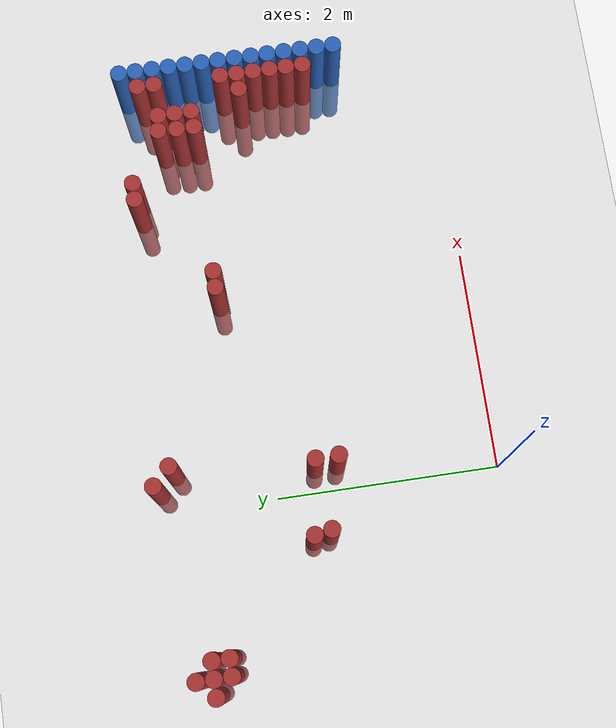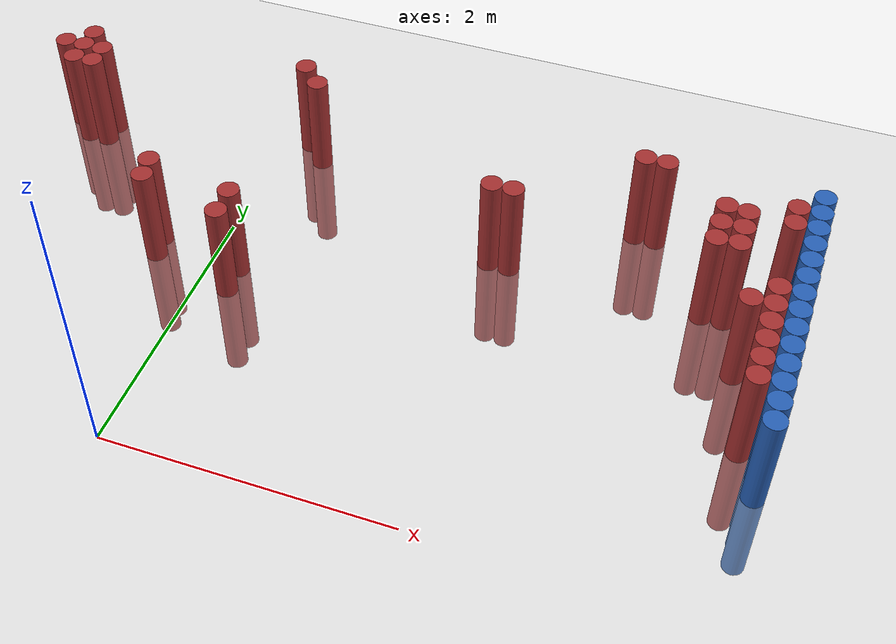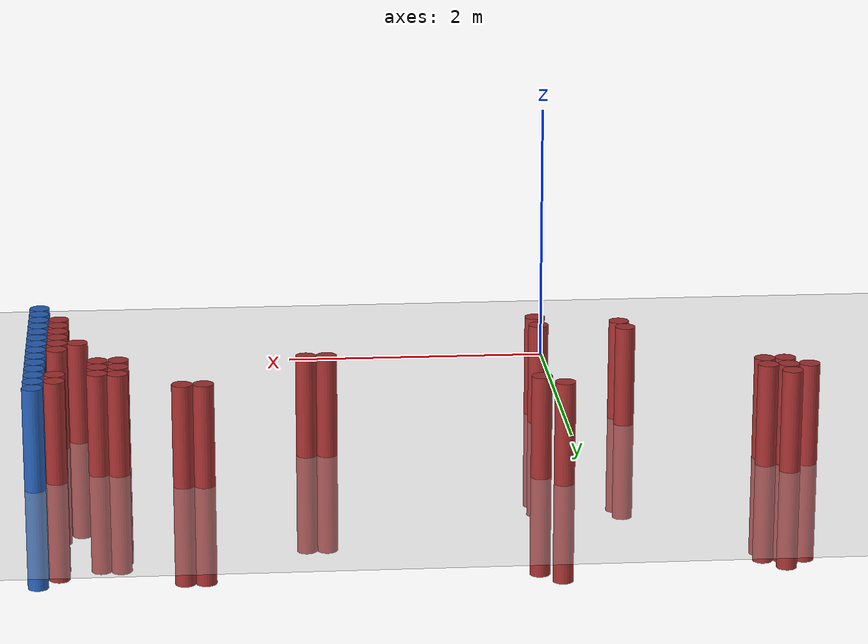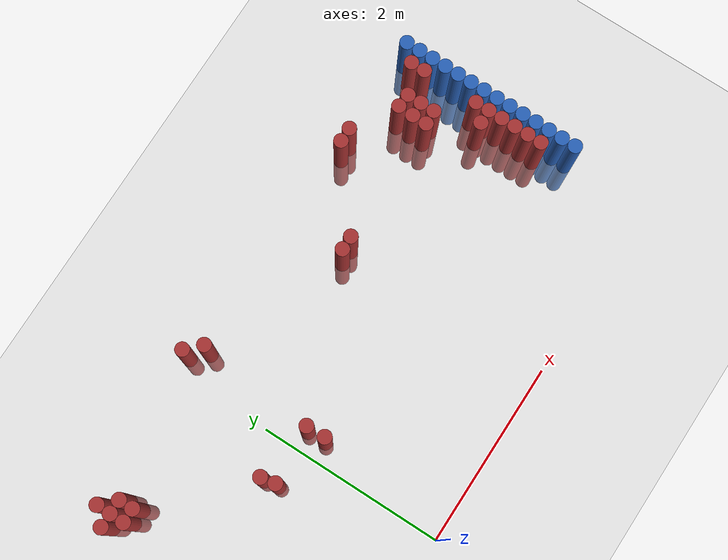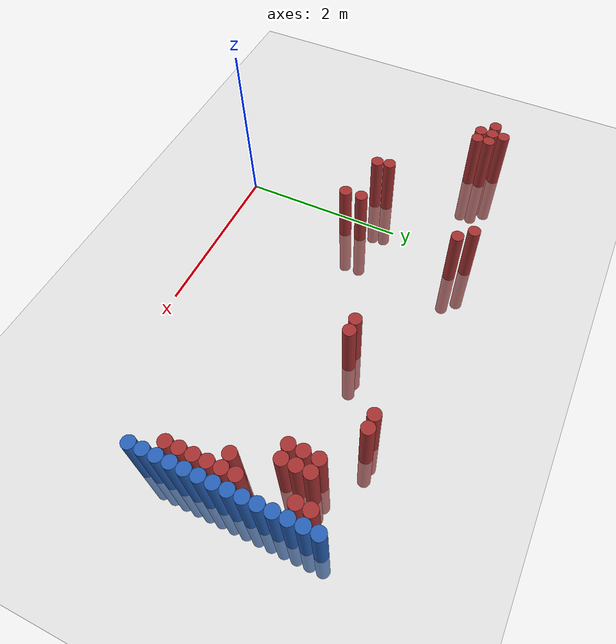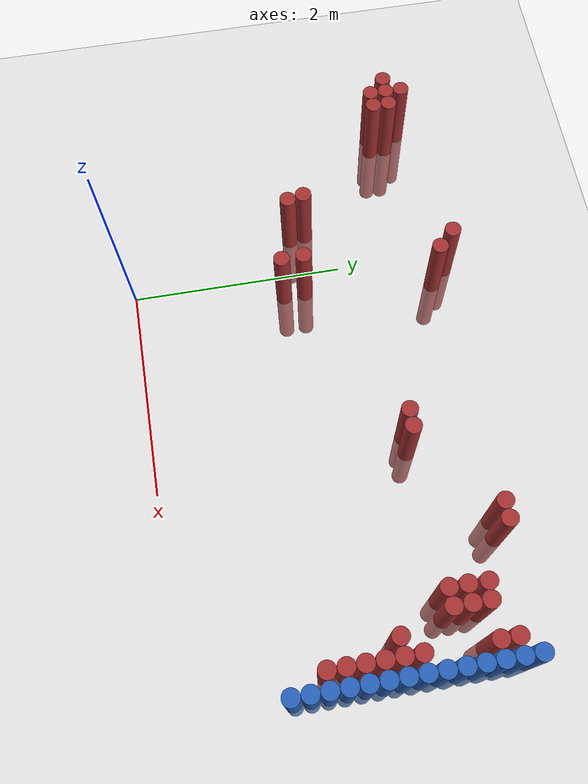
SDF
<sdf version="1.7">
 <world name="default">
  <model name="ground_plane">
   <static>1</static>
   <link name="link">
    <collision name="collision">
     <geometry><plane><normal>0 0 1</normal><size>100 100</size></plane></geometry>
     <surface><friction><ode><mu>100</mu><mu2>50</mu2></ode></friction></surface>
    </collision>
    <visual name="visual">
     <cast_shadows>0</cast_shadows>
     <geometry><plane><normal>0 0 1</normal><size>100 100</size></plane></geometry>
     <material>
      <script><uri>file://media/materials/scripts/gazebo.material</uri><name>Gazebo/Grey</name></script>
     </material>
    </visual>
   </link>
  </model>
  <model name="unit_cylinder_128">
   <static>1</static>
   <pose>3.925 1.075 0 0 -0 0</pose>
   <link name="link">
    <inertial>
     <mass>1</mass>
     <inertia><ixx>0.145833</ixx><ixy>0</ixy><ixz>0</ixz><iyy>0.145833</iyy><iyz>0</iyz><izz>0.125</izz></inertia>
    </inertial>
    <collision name="collision">
     <geometry><cylinder><radius>0.075</radius><length>1.5</length></cylinder></geometry>
    </collision>
    <visual name="visual">
     <geometry><cylinder><radius>0.075</radius><length>1.5</length></cylinder></geometry>
     <material><ambient>0.152 0.379 0.72 1</ambient><diffuse>0.152 0.379 0.72 1</diffuse></material>
     <material>
      <script><name>Gazebo/Grey</name><uri>file://media/materials/scripts/gazebo.material</uri></script>
     </material>
    </visual>
   </link>
  </model>
  <model name="unit_cylinder_130">
   <static>1</static>
   <pose>3.925 1.225 0 0 -0 0</pose>
   <link name="link">
    <inertial>
     <mass>1</mass>
     <inertia><ixx>0.145833</ixx><ixy>0</ixy><ixz>0</ixz><iyy>0.145833</iyy><iyz>0</iyz><izz>0.125</izz></inertia>
    </inertial>
    <collision name="collision">
     <geometry><cylinder><radius>0.075</radius><length>1.5</length></cylinder></geometry>
    </collision>
    <visual name="visual">
     <geometry><cylinder><radius>0.075</radius><length>1.5</length></cylinder></geometry>
     <material><ambient>0.152 0.379 0.72 1</ambient><diffuse>0.152 0.379 0.72 1</diffuse></material>
     <material>
      <script><name>Gazebo/Grey</name><uri>file://media/materials/scripts/gazebo.material</uri></script>
     </material>
    </visual>
   </link>
  </model>
  <model name="unit_cylinder_132">
   <static>1</static>
   <pose>3.925 1.375 0 0 -0 0</pose>
   <link name="link">
    <inertial>
     <mass>1</mass>
     <inertia><ixx>0.145833</ixx><ixy>0</ixy><ixz>0</ixz><iyy>0.145833</iyy><iyz>0</iyz><izz>0.125</izz></inertia>
    </inertial>
    <collision name="collision">
     <geometry><cylinder><radius>0.075</radius><length>1.5</length></cylinder></geometry>
    </collision>
    <visual name="visual">
     <geometry><cylinder><radius>0.075</radius><length>1.5</length></cylinder></geometry>
     <material><ambient>0.152 0.379 0.72 1</ambient><diffuse>0.152 0.379 0.72 1</diffuse></material>
     <material>
      <script><name>Gazebo/Grey</name><uri>file://media/materials/scripts/gazebo.material</uri></script>
     </material>
    </visual>
   </link>
  </model>
  <model name="unit_cylinder_134">
   <static>1</static>
   <pose>3.925 1.525 0 0 -0 0</pose>
   <link name="link">
    <inertial>
     <mass>1</mass>
     <inertia><ixx>0.145833</ixx><ixy>0</ixy><ixz>0</ixz><iyy>0.145833</iyy><iyz>0</iyz><izz>0.125</izz></inertia>
    </inertial>
    <collision name="collision">
     <geometry><cylinder><radius>0.075</radius><length>1.5</length></cylinder></geometry>
    </collision>
    <visual name="visual">
     <geometry><cylinder><radius>0.075</radius><length>1.5</length></cylinder></geometry>
     <material><ambient>0.152 0.379 0.72 1</ambient><diffuse>0.152 0.379 0.72 1</diffuse></material>
     <material>
      <script><name>Gazebo/Grey</name><uri>file://media/materials/scripts/gazebo.material</uri></script>
     </material>
    </visual>
   </link>
  </model>
  <model name="unit_cylinder_136">
   <static>1</static>
   <pose>3.925 1.675 0 0 -0 0</pose>
   <link name="link">
    <inertial>
     <mass>1</mass>
     <inertia><ixx>0.145833</ixx><ixy>0</ixy><ixz>0</ixz><iyy>0.145833</iyy><iyz>0</iyz><izz>0.125</izz></inertia>
    </inertial>
    <collision name="collision">
     <geometry><cylinder><radius>0.075</radius><length>1.5</length></cylinder></geometry>
    </collision>
    <visual name="visual">
     <geometry><cylinder><radius>0.075</radius><length>1.5</length></cylinder></geometry>
     <material><ambient>0.152 0.379 0.72 1</ambient><diffuse>0.152 0.379 0.72 1</diffuse></material>
     <material>
      <script><name>Gazebo/Grey</name><uri>file://media/materials/scripts/gazebo.material</uri></script>
     </material>
    </visual>
   </link>
  </model>
  <model name="unit_cylinder_138">
   <static>1</static>
   <pose>3.925 1.825 0 0 -0 0</pose>
   <link name="link">
    <inertial>
     <mass>1</mass>
     <inertia><ixx>0.145833</ixx><ixy>0</ixy><ixz>0</ixz><iyy>0.145833</iyy><iyz>0</iyz><izz>0.125</izz></inertia>
    </inertial>
    <collision name="collision">
     <geometry><cylinder><radius>0.075</radius><length>1.5</length></cylinder></geometry>
    </collision>
    <visual name="visual">
     <geometry><cylinder><radius>0.075</radius><length>1.5</length></cylinder></geometry>
     <material><ambient>0.152 0.379 0.72 1</ambient><diffuse>0.152 0.379 0.72 1</diffuse></material>
     <material>
      <script><name>Gazebo/Grey</name><uri>file://media/materials/scripts/gazebo.material</uri></script>
     </material>
    </visual>
   </link>
  </model>
  <model name="unit_cylinder_140">
   <static>1</static>
   <pose>3.925 1.975 0 0 -0 0</pose>
   <link name="link">
    <inertial>
     <mass>1</mass>
     <inertia><ixx>0.145833</ixx><ixy>0</ixy><ixz>0</ixz><iyy>0.145833</iyy><iyz>0</iyz><izz>0.125</izz></inertia>
    </inertial>
    <collision name="collision">
     <geometry><cylinder><radius>0.075</radius><length>1.5</length></cylinder></geometry>
    </collision>
    <visual name="visual">
     <geometry><cylinder><radius>0.075</radius><length>1.5</length></cylinder></geometry>
     <material><ambient>0.152 0.379 0.72 1</ambient><diffuse>0.152 0.379 0.72 1</diffuse></material>
     <material>
      <script><name>Gazebo/Grey</name><uri>file://media/materials/scripts/gazebo.material</uri></script>
     </material>
    </visual>
   </link>
  </model>
  <model name="unit_cylinder_142">
   <static>1</static>
   <pose>3.925 2.125 0 0 -0 0</pose>
   <link name="link">
    <inertial>
     <mass>1</mass>
     <inertia><ixx>0.145833</ixx><ixy>0</ixy><ixz>0</ixz><iyy>0.145833</iyy><iyz>0</iyz><izz>0.125</izz></inertia>
    </inertial>
    <collision name="collision">
     <geometry><cylinder><radius>0.075</radius><length>1.5</length></cylinder></geometry>
    </collision>
    <visual name="visual">
     <geometry><cylinder><radius>0.075</radius><length>1.5</length></cylinder></geometry>
     <material><ambient>0.152 0.379 0.72 1</ambient><diffuse>0.152 0.379 0.72 1</diffuse></material>
     <material>
      <script><name>Gazebo/Grey</name><uri>file://media/materials/scripts/gazebo.material</uri></script>
     </material>
    </visual>
   </link>
  </model>
  <model name="unit_cylinder_144">
   <static>1</static>
   <pose>3.925 2.275 0 0 -0 0</pose>
   <link name="link">
    <inertial>
     <mass>1</mass>
     <inertia><ixx>0.145833</ixx><ixy>0</ixy><ixz>0</ixz><iyy>0.145833</iyy><iyz>0</iyz><izz>0.125</izz></inertia>
    </inertial>
    <collision name="collision">
     <geometry><cylinder><radius>0.075</radius><length>1.5</length></cylinder></geometry>
    </collision>
    <visual name="visual">
     <geometry><cylinder><radius>0.075</radius><length>1.5</length></cylinder></geometry>
     <material><ambient>0.152 0.379 0.72 1</ambient><diffuse>0.152 0.379 0.72 1</diffuse></material>
     <material>
      <script><name>Gazebo/Grey</name><uri>file://media/materials/scripts/gazebo.material</uri></script>
     </material>
    </visual>
   </link>
  </model>
  <model name="unit_cylinder_146">
   <static>1</static>
   <pose>3.925 2.425 0 0 -0 0</pose>
   <link name="link">
    <inertial>
     <mass>1</mass>
     <inertia><ixx>0.145833</ixx><ixy>0</ixy><ixz>0</ixz><iyy>0.145833</iyy><iyz>0</iyz><izz>0.125</izz></inertia>
    </inertial>
    <collision name="collision">
     <geometry><cylinder><radius>0.075</radius><length>1.5</length></cylinder></geometry>
    </collision>
    <visual name="visual">
     <geometry><cylinder><radius>0.075</radius><length>1.5</length></cylinder></geometry>
     <material><ambient>0.152 0.379 0.72 1</ambient><diffuse>0.152 0.379 0.72 1</diffuse></material>
     <material>
      <script><name>Gazebo/Grey</name><uri>file://media/materials/scripts/gazebo.material</uri></script>
     </material>
    </visual>
   </link>
  </model>
  <model name="unit_cylinder_148">
   <static>1</static>
   <pose>3.925 2.575 0 0 -0 0</pose>
   <link name="link">
    <inertial>
     <mass>1</mass>
     <inertia><ixx>0.145833</ixx><ixy>0</ixy><ixz>0</ixz><iyy>0.145833</iyy><iyz>0</iyz><izz>0.125</izz></inertia>
    </inertial>
    <collision name="collision">
     <geometry><cylinder><radius>0.075</radius><length>1.5</length></cylinder></geometry>
    </collision>
    <visual name="visual">
     <geometry><cylinder><radius>0.075</radius><length>1.5</length></cylinder></geometry>
     <material><ambient>0.152 0.379 0.72 1</ambient><diffuse>0.152 0.379 0.72 1</diffuse></material>
     <material>
      <script><name>Gazebo/Grey</name><uri>file://media/materials/scripts/gazebo.material</uri></script>
     </material>
    </visual>
   </link>
  </model>
  <model name="unit_cylinder_150">
   <static>1</static>
   <pose>3.925 2.725 0 0 -0 0</pose>
   <link name="link">
    <inertial>
     <mass>1</mass>
     <inertia><ixx>0.145833</ixx><ixy>0</ixy><ixz>0</ixz><iyy>0.145833</iyy><iyz>0</iyz><izz>0.125</izz></inertia>
    </inertial>
    <collision name="collision">
     <geometry><cylinder><radius>0.075</radius><length>1.5</length></cylinder></geometry>
    </collision>
    <visual name="visual">
     <geometry><cylinder><radius>0.075</radius><length>1.5</length></cylinder></geometry>
     <material><ambient>0.152 0.379 0.72 1</ambient><diffuse>0.152 0.379 0.72 1</diffuse></material>
     <material>
      <script><name>Gazebo/Grey</name><uri>file://media/materials/scripts/gazebo.material</uri></script>
     </material>
    </visual>
   </link>
  </model>
  <model name="unit_cylinder_152">
   <static>1</static>
   <pose>3.925 2.875 0 0 -0 0</pose>
   <link name="link">
    <inertial>
     <mass>1</mass>
     <inertia><ixx>0.145833</ixx><ixy>0</ixy><ixz>0</ixz><iyy>0.145833</iyy><iyz>0</iyz><izz>0.125</izz></inertia>
    </inertial>
    <collision name="collision">
     <geometry><cylinder><radius>0.075</radius><length>1.5</length></cylinder></geometry>
    </collision>
    <visual name="visual">
     <geometry><cylinder><radius>0.075</radius><length>1.5</length></cylinder></geometry>
     <material><ambient>0.152 0.379 0.72 1</ambient><diffuse>0.152 0.379 0.72 1</diffuse></material>
     <material>
      <script><name>Gazebo/Grey</name><uri>file://media/materials/scripts/gazebo.material</uri></script>
     </material>
    </visual>
   </link>
  </model>
  <model name="unit_cylinder_325">
   <static>1</static>
   <pose>-1.625 2.725 0 0 -0 0</pose>
   <link name="link">
    <inertial>
     <mass>1</mass>
     <inertia><ixx>0.145833</ixx><ixy>0</ixy><ixz>0</ixz><iyy>0.145833</iyy><iyz>0</iyz><izz>0.125</izz></inertia>
    </inertial>
    <collision name="collision">
     <geometry><cylinder><radius>0.075</radius><length>1.5</length></cylinder></geometry>
    </collision>
    <visual name="visual">
     <geometry><cylinder><radius>0.075</radius><length>1.5</length></cylinder></geometry>
     <material><ambient>0.648 0.192 0.192 1</ambient><diffuse>0.648 0.192 0.192 1</diffuse></material>
     <material>
      <script><name>Gazebo/Grey</name><uri>file://media/materials/scripts/gazebo.material</uri></script>
     </material>
    </visual>
   </link>
  </model>
  <model name="unit_cylinder_331">
   <static>1</static>
   <pose>-1.475 2.575 0 0 -0 0</pose>
   <link name="link">
    <inertial>
     <mass>1</mass>
     <inertia><ixx>0.145833</ixx><ixy>0</ixy><ixz>0</ixz><iyy>0.145833</iyy><iyz>0</iyz><izz>0.125</izz></inertia>
    </inertial>
    <collision name="collision">
     <geometry><cylinder><radius>0.075</radius><length>1.5</length></cylinder></geometry>
    </collision>
    <visual name="visual">
     <geometry><cylinder><radius>0.075</radius><length>1.5</length></cylinder></geometry>
     <material><ambient>0.648 0.192 0.192 1</ambient><diffuse>0.648 0.192 0.192 1</diffuse></material>
     <material>
      <script><name>Gazebo/Grey</name><uri>file://media/materials/scripts/gazebo.material</uri></script>
     </material>
    </visual>
   </link>
  </model>
  <model name="unit_cylinder_332">
   <static>1</static>
   <pose>-1.475 2.725 0 0 -0 0</pose>
   <link name="link">
    <inertial>
     <mass>1</mass>
     <inertia><ixx>0.145833</ixx><ixy>0</ixy><ixz>0</ixz><iyy>0.145833</iyy><iyz>0</iyz><izz>0.125</izz></inertia>
    </inertial>
    <collision name="collision">
     <geometry><cylinder><radius>0.075</radius><length>1.5</length></cylinder></geometry>
    </collision>
    <visual name="visual">
     <geometry><cylinder><radius>0.075</radius><length>1.5</length></cylinder></geometry>
     <material><ambient>0.648 0.192 0.192 1</ambient><diffuse>0.648 0.192 0.192 1</diffuse></material>
     <material>
      <script><name>Gazebo/Grey</name><uri>file://media/materials/scripts/gazebo.material</uri></script>
     </material>
    </visual>
   </link>
  </model>
  <model name="unit_cylinder_333">
   <static>1</static>
   <pose>-1.475 2.875 0 0 -0 0</pose>
   <link name="link">
    <inertial>
     <mass>1</mass>
     <inertia><ixx>0.145833</ixx><ixy>0</ixy><ixz>0</ixz><iyy>0.145833</iyy><iyz>0</iyz><izz>0.125</izz></inertia>
    </inertial>
    <collision name="collision">
     <geometry><cylinder><radius>0.075</radius><length>1.5</length></cylinder></geometry>
    </collision>
    <visual name="visual">
     <geometry><cylinder><radius>0.075</radius><length>1.5</length></cylinder></geometry>
     <material><ambient>0.648 0.192 0.192 1</ambient><diffuse>0.648 0.192 0.192 1</diffuse></material>
     <material>
      <script><name>Gazebo/Grey</name><uri>file://media/materials/scripts/gazebo.material</uri></script>
     </material>
    </visual>
   </link>
  </model>
  <model name="unit_cylinder_334">
   <static>1</static>
   <pose>-1.325 2.575 0 0 -0 0</pose>
   <link name="link">
    <inertial>
     <mass>1</mass>
     <inertia><ixx>0.145833</ixx><ixy>0</ixy><ixz>0</ixz><iyy>0.145833</iyy><iyz>0</iyz><izz>0.125</izz></inertia>
    </inertial>
    <collision name="collision">
     <geometry><cylinder><radius>0.075</radius><length>1.5</length></cylinder></geometry>
    </collision>
    <visual name="visual">
     <geometry><cylinder><radius>0.075</radius><length>1.5</length></cylinder></geometry>
     <material><ambient>0.648 0.192 0.192 1</ambient><diffuse>0.648 0.192 0.192 1</diffuse></material>
     <material>
      <script><name>Gazebo/Grey</name><uri>file://media/materials/scripts/gazebo.material</uri></script>
     </material>
    </visual>
   </link>
  </model>
  <model name="unit_cylinder_335">
   <static>1</static>
   <pose>-1.325 2.725 0 0 -0 0</pose>
   <link name="link">
    <inertial>
     <mass>1</mass>
     <inertia><ixx>0.145833</ixx><ixy>0</ixy><ixz>0</ixz><iyy>0.145833</iyy><iyz>0</iyz><izz>0.125</izz></inertia>
    </inertial>
    <collision name="collision">
     <geometry><cylinder><radius>0.075</radius><length>1.5</length></cylinder></geometry>
    </collision>
    <visual name="visual">
     <geometry><cylinder><radius>0.075</radius><length>1.5</length></cylinder></geometry>
     <material><ambient>0.648 0.192 0.192 1</ambient><diffuse>0.648 0.192 0.192 1</diffuse></material>
     <material>
      <script><name>Gazebo/Grey</name><uri>file://media/materials/scripts/gazebo.material</uri></script>
     </material>
    </visual>
   </link>
  </model>
  <model name="unit_cylinder_369">
   <static>1</static>
   <pose>0.175 3.025 0 0 -0 0</pose>
   <link name="link">
    <inertial>
     <mass>1</mass>
     <inertia><ixx>0.145833</ixx><ixy>0</ixy><ixz>0</ixz><iyy>0.145833</iyy><iyz>0</iyz><izz>0.125</izz></inertia>
    </inertial>
    <collision name="collision">
     <geometry><cylinder><radius>0.075</radius><length>1.5</length></cylinder></geometry>
    </collision>
    <visual name="visual">
     <geometry><cylinder><radius>0.075</radius><length>1.5</length></cylinder></geometry>
     <material><ambient>0.648 0.192 0.192 1</ambient><diffuse>0.648 0.192 0.192 1</diffuse></material>
     <material>
      <script><name>Gazebo/Grey</name><uri>file://media/materials/scripts/gazebo.material</uri></script>
     </material>
    </visual>
   </link>
  </model>
  <model name="unit_cylinder_374">
   <static>1</static>
   <pose>0.325 2.875 0 0 -0 0</pose>
   <link name="link">
    <inertial>
     <mass>1</mass>
     <inertia><ixx>0.145833</ixx><ixy>0</ixy><ixz>0</ixz><iyy>0.145833</iyy><iyz>0</iyz><izz>0.125</izz></inertia>
    </inertial>
    <collision name="collision">
     <geometry><cylinder><radius>0.075</radius><length>1.5</length></cylinder></geometry>
    </collision>
    <visual name="visual">
     <geometry><cylinder><radius>0.075</radius><length>1.5</length></cylinder></geometry>
     <material><ambient>0.648 0.192 0.192 1</ambient><diffuse>0.648 0.192 0.192 1</diffuse></material>
     <material>
      <script><name>Gazebo/Grey</name><uri>file://media/materials/scripts/gazebo.material</uri></script>
     </material>
    </visual>
   </link>
  </model>
  <model name="unit_cylinder_400">
   <static>1</static>
   <pose>1.825 2.275 0 0 -0 0</pose>
   <link name="link">
    <inertial>
     <mass>1</mass>
     <inertia><ixx>0.145833</ixx><ixy>0</ixy><ixz>0</ixz><iyy>0.145833</iyy><iyz>0</iyz><izz>0.125</izz></inertia>
    </inertial>
    <collision name="collision">
     <geometry><cylinder><radius>0.075</radius><length>1.5</length></cylinder></geometry>
    </collision>
    <visual name="visual">
     <geometry><cylinder><radius>0.075</radius><length>1.5</length></cylinder></geometry>
     <material><ambient>0.648 0.192 0.192 1</ambient><diffuse>0.648 0.192 0.192 1</diffuse></material>
     <material>
      <script><name>Gazebo/Grey</name><uri>file://media/materials/scripts/gazebo.material</uri></script>
     </material>
    </visual>
   </link>
  </model>
  <model name="unit_cylinder_402">
   <static>1</static>
   <pose>1.975 2.275 0 0 -0 0</pose>
   <link name="link">
    <inertial>
     <mass>1</mass>
     <inertia><ixx>0.145833</ixx><ixy>0</ixy><ixz>0</ixz><iyy>0.145833</iyy><iyz>0</iyz><izz>0.125</izz></inertia>
    </inertial>
    <collision name="collision">
     <geometry><cylinder><radius>0.075</radius><length>1.5</length></cylinder></geometry>
    </collision>
    <visual name="visual">
     <geometry><cylinder><radius>0.075</radius><length>1.5</length></cylinder></geometry>
     <material><ambient>0.648 0.192 0.192 1</ambient><diffuse>0.648 0.192 0.192 1</diffuse></material>
     <material>
      <script><name>Gazebo/Grey</name><uri>file://media/materials/scripts/gazebo.material</uri></script>
     </material>
    </visual>
   </link>
  </model>
  <model name="unit_cylinder_412">
   <static>1</static>
   <pose>2.725 2.875 0 0 -0 0</pose>
   <link name="link">
    <inertial>
     <mass>1</mass>
     <inertia><ixx>0.145833</ixx><ixy>0</ixy><ixz>0</ixz><iyy>0.145833</iyy><iyz>0</iyz><izz>0.125</izz></inertia>
    </inertial>
    <collision name="collision">
     <geometry><cylinder><radius>0.075</radius><length>1.5</length></cylinder></geometry>
    </collision>
    <visual name="visual">
     <geometry><cylinder><radius>0.075</radius><length>1.5</length></cylinder></geometry>
     <material><ambient>0.648 0.192 0.192 1</ambient><diffuse>0.648 0.192 0.192 1</diffuse></material>
     <material>
      <script><name>Gazebo/Grey</name><uri>file://media/materials/scripts/gazebo.material</uri></script>
     </material>
    </visual>
   </link>
  </model>
  <model name="unit_cylinder_415">
   <static>1</static>
   <pose>2.875 2.875 0 0 -0 0</pose>
   <link name="link">
    <inertial>
     <mass>1</mass>
     <inertia><ixx>0.145833</ixx><ixy>0</ixy><ixz>0</ixz><iyy>0.145833</iyy><iyz>0</iyz><izz>0.125</izz></inertia>
    </inertial>
    <collision name="collision">
     <geometry><cylinder><radius>0.075</radius><length>1.5</length></cylinder></geometry>
    </collision>
    <visual name="visual">
     <geometry><cylinder><radius>0.075</radius><length>1.5</length></cylinder></geometry>
     <material><ambient>0.648 0.192 0.192 1</ambient><diffuse>0.648 0.192 0.192 1</diffuse></material>
     <material>
      <script><name>Gazebo/Grey</name><uri>file://media/materials/scripts/gazebo.material</uri></script>
     </material>
    </visual>
   </link>
  </model>
  <model name="unit_cylinder_433">
   <static>1</static>
   <pose>3.325 2.425 0 0 -0 0</pose>
   <link name="link">
    <inertial>
     <mass>1</mass>
     <inertia><ixx>0.145833</ixx><ixy>0</ixy><ixz>0</ixz><iyy>0.145833</iyy><iyz>0</iyz><izz>0.125</izz></inertia>
    </inertial>
    <collision name="collision">
     <geometry><cylinder><radius>0.075</radius><length>1.5</length></cylinder></geometry>
    </collision>
    <visual name="visual">
     <geometry><cylinder><radius>0.075</radius><length>1.5</length></cylinder></geometry>
     <material><ambient>0.648 0.192 0.192 1</ambient><diffuse>0.648 0.192 0.192 1</diffuse></material>
     <material>
      <script><name>Gazebo/Grey</name><uri>file://media/materials/scripts/gazebo.material</uri></script>
     </material>
    </visual>
   </link>
  </model>
  <model name="unit_cylinder_435">
   <static>1</static>
   <pose>3.475 2.275 0 0 -0 0</pose>
   <link name="link">
    <inertial>
     <mass>1</mass>
     <inertia><ixx>0.145833</ixx><ixy>0</ixy><ixz>0</ixz><iyy>0.145833</iyy><iyz>0</iyz><izz>0.125</izz></inertia>
    </inertial>
    <collision name="collision">
     <geometry><cylinder><radius>0.075</radius><length>1.5</length></cylinder></geometry>
    </collision>
    <visual name="visual">
     <geometry><cylinder><radius>0.075</radius><length>1.5</length></cylinder></geometry>
     <material><ambient>0.648 0.192 0.192 1</ambient><diffuse>0.648 0.192 0.192 1</diffuse></material>
     <material>
      <script><name>Gazebo/Grey</name><uri>file://media/materials/scripts/gazebo.material</uri></script>
     </material>
    </visual>
   </link>
  </model>
  <model name="unit_cylinder_436">
   <static>1</static>
   <pose>3.475 2.425 0 0 -0 0</pose>
   <link name="link">
    <inertial>
     <mass>1</mass>
     <inertia><ixx>0.145833</ixx><ixy>0</ixy><ixz>0</ixz><iyy>0.145833</iyy><iyz>0</iyz><izz>0.125</izz></inertia>
    </inertial>
    <collision name="collision">
     <geometry><cylinder><radius>0.075</radius><length>1.5</length></cylinder></geometry>
    </collision>
    <visual name="visual">
     <geometry><cylinder><radius>0.075</radius><length>1.5</length></cylinder></geometry>
     <material><ambient>0.648 0.192 0.192 1</ambient><diffuse>0.648 0.192 0.192 1</diffuse></material>
     <material>
      <script><name>Gazebo/Grey</name><uri>file://media/materials/scripts/gazebo.material</uri></script>
     </material>
    </visual>
   </link>
  </model>
  <model name="unit_cylinder_437">
   <static>1</static>
   <pose>3.475 2.575 0 0 -0 0</pose>
   <link name="link">
    <inertial>
     <mass>1</mass>
     <inertia><ixx>0.145833</ixx><ixy>0</ixy><ixz>0</ixz><iyy>0.145833</iyy><iyz>0</iyz><izz>0.125</izz></inertia>
    </inertial>
    <collision name="collision">
     <geometry><cylinder><radius>0.075</radius><length>1.5</length></cylinder></geometry>
    </collision>
    <visual name="visual">
     <geometry><cylinder><radius>0.075</radius><length>1.5</length></cylinder></geometry>
     <material><ambient>0.648 0.192 0.192 1</ambient><diffuse>0.648 0.192 0.192 1</diffuse></material>
     <material>
      <script><name>Gazebo/Grey</name><uri>file://media/materials/scripts/gazebo.material</uri></script>
     </material>
    </visual>
   </link>
  </model>
  <model name="unit_cylinder_441">
   <static>1</static>
   <pose>3.625 1.825 0 0 -0 0</pose>
   <link name="link">
    <inertial>
     <mass>1</mass>
     <inertia><ixx>0.145833</ixx><ixy>0</ixy><ixz>0</ixz><iyy>0.145833</iyy><iyz>0</iyz><izz>0.125</izz></inertia>
    </inertial>
    <collision name="collision">
     <geometry><cylinder><radius>0.075</radius><length>1.5</length></cylinder></geometry>
    </collision>
    <visual name="visual">
     <geometry><cylinder><radius>0.075</radius><length>1.5</length></cylinder></geometry>
     <material><ambient>0.648 0.192 0.192 1</ambient><diffuse>0.648 0.192 0.192 1</diffuse></material>
     <material>
      <script><name>Gazebo/Grey</name><uri>file://media/materials/scripts/gazebo.material</uri></script>
     </material>
    </visual>
   </link>
  </model>
  <model name="unit_cylinder_448">
   <static>1</static>
   <pose>3.775 1.225 0 0 -0 0</pose>
   <link name="link">
    <inertial>
     <mass>1</mass>
     <inertia><ixx>0.145833</ixx><ixy>0</ixy><ixz>0</ixz><iyy>0.145833</iyy><iyz>0</iyz><izz>0.125</izz></inertia>
    </inertial>
    <collision name="collision">
     <geometry><cylinder><radius>0.075</radius><length>1.5</length></cylinder></geometry>
    </collision>
    <visual name="visual">
     <geometry><cylinder><radius>0.075</radius><length>1.5</length></cylinder></geometry>
     <material><ambient>0.648 0.192 0.192 1</ambient><diffuse>0.648 0.192 0.192 1</diffuse></material>
     <material>
      <script><name>Gazebo/Grey</name><uri>file://media/materials/scripts/gazebo.material</uri></script>
     </material>
    </visual>
   </link>
  </model>
  <model name="unit_cylinder_449">
   <static>1</static>
   <pose>3.775 1.375 0 0 -0 0</pose>
   <link name="link">
    <inertial>
     <mass>1</mass>
     <inertia><ixx>0.145833</ixx><ixy>0</ixy><ixz>0</ixz><iyy>0.145833</iyy><iyz>0</iyz><izz>0.125</izz></inertia>
    </inertial>
    <collision name="collision">
     <geometry><cylinder><radius>0.075</radius><length>1.5</length></cylinder></geometry>
    </collision>
    <visual name="visual">
     <geometry><cylinder><radius>0.075</radius><length>1.5</length></cylinder></geometry>
     <material><ambient>0.648 0.192 0.192 1</ambient><diffuse>0.648 0.192 0.192 1</diffuse></material>
     <material>
      <script><name>Gazebo/Grey</name><uri>file://media/materials/scripts/gazebo.material</uri></script>
     </material>
    </visual>
   </link>
  </model>
  <model name="unit_cylinder_450">
   <static>1</static>
   <pose>3.775 1.525 0 0 -0 0</pose>
   <link name="link">
    <inertial>
     <mass>1</mass>
     <inertia><ixx>0.145833</ixx><ixy>0</ixy><ixz>0</ixz><iyy>0.145833</iyy><iyz>0</iyz><izz>0.125</izz></inertia>
    </inertial>
    <collision name="collision">
     <geometry><cylinder><radius>0.075</radius><length>1.5</length></cylinder></geometry>
    </collision>
    <visual name="visual">
     <geometry><cylinder><radius>0.075</radius><length>1.5</length></cylinder></geometry>
     <material><ambient>0.648 0.192 0.192 1</ambient><diffuse>0.648 0.192 0.192 1</diffuse></material>
     <material>
      <script><name>Gazebo/Grey</name><uri>file://media/materials/scripts/gazebo.material</uri></script>
     </material>
    </visual>
   </link>
  </model>
  <model name="unit_cylinder_451">
   <static>1</static>
   <pose>3.775 1.675 0 0 -0 0</pose>
   <link name="link">
    <inertial>
     <mass>1</mass>
     <inertia><ixx>0.145833</ixx><ixy>0</ixy><ixz>0</ixz><iyy>0.145833</iyy><iyz>0</iyz><izz>0.125</izz></inertia>
    </inertial>
    <collision name="collision">
     <geometry><cylinder><radius>0.075</radius><length>1.5</length></cylinder></geometry>
    </collision>
    <visual name="visual">
     <geometry><cylinder><radius>0.075</radius><length>1.5</length></cylinder></geometry>
     <material><ambient>0.648 0.192 0.192 1</ambient><diffuse>0.648 0.192 0.192 1</diffuse></material>
     <material>
      <script><name>Gazebo/Grey</name><uri>file://media/materials/scripts/gazebo.material</uri></script>
     </material>
    </visual>
   </link>
  </model>
  <model name="unit_cylinder_452">
   <static>1</static>
   <pose>3.775 1.825 0 0 -0 0</pose>
   <link name="link">
    <inertial>
     <mass>1</mass>
     <inertia><ixx>0.145833</ixx><ixy>0</ixy><ixz>0</ixz><iyy>0.145833</iyy><iyz>0</iyz><izz>0.125</izz></inertia>
    </inertial>
    <collision name="collision">
     <geometry><cylinder><radius>0.075</radius><length>1.5</length></cylinder></geometry>
    </collision>
    <visual name="visual">
     <geometry><cylinder><radius>0.075</radius><length>1.5</length></cylinder></geometry>
     <material><ambient>0.648 0.192 0.192 1</ambient><diffuse>0.648 0.192 0.192 1</diffuse></material>
     <material>
      <script><name>Gazebo/Grey</name><uri>file://media/materials/scripts/gazebo.material</uri></script>
     </material>
    </visual>
   </link>
  </model>
  <model name="unit_cylinder_453">
   <static>1</static>
   <pose>3.775 1.975 0 0 -0 0</pose>
   <link name="link">
    <inertial>
     <mass>1</mass>
     <inertia><ixx>0.145833</ixx><ixy>0</ixy><ixz>0</ixz><iyy>0.145833</iyy><iyz>0</iyz><izz>0.125</izz></inertia>
    </inertial>
    <collision name="collision">
     <geometry><cylinder><radius>0.075</radius><length>1.5</length></cylinder></geometry>
    </collision>
    <visual name="visual">
     <geometry><cylinder><radius>0.075</radius><length>1.5</length></cylinder></geometry>
     <material><ambient>0.648 0.192 0.192 1</ambient><diffuse>0.648 0.192 0.192 1</diffuse></material>
     <material>
      <script><name>Gazebo/Grey</name><uri>file://media/materials/scripts/gazebo.material</uri></script>
     </material>
    </visual>
   </link>
  </model>
  <model name="unit_cylinder_454">
   <static>1</static>
   <pose>3.775 2.575 0 0 -0 0</pose>
   <link name="link">
    <inertial>
     <mass>1</mass>
     <inertia><ixx>0.145833</ixx><ixy>0</ixy><ixz>0</ixz><iyy>0.145833</iyy><iyz>0</iyz><izz>0.125</izz></inertia>
    </inertial>
    <collision name="collision">
     <geometry><cylinder><radius>0.075</radius><length>1.5</length></cylinder></geometry>
    </collision>
    <visual name="visual">
     <geometry><cylinder><radius>0.075</radius><length>1.5</length></cylinder></geometry>
     <material><ambient>0.648 0.192 0.192 1</ambient><diffuse>0.648 0.192 0.192 1</diffuse></material>
     <material>
      <script><name>Gazebo/Grey</name><uri>file://media/materials/scripts/gazebo.material</uri></script>
     </material>
    </visual>
   </link>
  </model>
  <model name="unit_cylinder_455">
   <static>1</static>
   <pose>3.775 2.725 0 0 -0 0</pose>
   <link name="link">
    <inertial>
     <mass>1</mass>
     <inertia><ixx>0.145833</ixx><ixy>0</ixy><ixz>0</ixz><iyy>0.145833</iyy><iyz>0</iyz><izz>0.125</izz></inertia>
    </inertial>
    <collision name="collision">
     <geometry><cylinder><radius>0.075</radius><length>1.5</length></cylinder></geometry>
    </collision>
    <visual name="visual">
     <geometry><cylinder><radius>0.075</radius><length>1.5</length></cylinder></geometry>
     <material><ambient>0.648 0.192 0.192 1</ambient><diffuse>0.648 0.192 0.192 1</diffuse></material>
     <material>
      <script><name>Gazebo/Grey</name><uri>file://media/materials/scripts/gazebo.material</uri></script>
     </material>
    </visual>
   </link>
  </model>
  <model name="unit_cylinder_481">
   <static>1</static>
   <pose>3.925 0.925 0 0 -0 0</pose>
   <link name="link">
    <inertial>
     <mass>1</mass>
     <inertia><ixx>0.145833</ixx><ixy>0</ixy><ixz>0</ixz><iyy>0.145833</iyy><iyz>0</iyz><izz>0.125</izz></inertia>
    </inertial>
    <collision name="collision">
     <geometry><cylinder><radius>0.075</radius><length>1.5</length></cylinder></geometry>
    </collision>
    <visual name="visual">
     <geometry><cylinder><radius>0.075</radius><length>1.5</length></cylinder></geometry>
     <material><ambient>0.152 0.379 0.72 1</ambient><diffuse>0.152 0.379 0.72 1</diffuse></material>
     <material>
      <script><name>Gazebo/Grey</name><uri>file://media/materials/scripts/gazebo.material</uri></script>
     </material>
    </visual>
   </link>
  </model>
  <model name="unit_cylinder_482">
   <static>1</static>
   <pose>3.925 1.075 0 0 -0 0</pose>
   <link name="link">
    <inertial>
     <mass>1</mass>
     <inertia><ixx>0.145833</ixx><ixy>0</ixy><ixz>0</ixz><iyy>0.145833</iyy><iyz>0</iyz><izz>0.125</izz></inertia>
    </inertial>
    <collision name="collision">
     <geometry><cylinder><radius>0.075</radius><length>1.5</length></cylinder></geometry>
    </collision>
    <visual name="visual">
     <geometry><cylinder><radius>0.075</radius><length>1.5</length></cylinder></geometry>
     <material><ambient>0.152 0.379 0.72 1</ambient><diffuse>0.152 0.379 0.72 1</diffuse></material>
     <material>
      <script><name>Gazebo/Grey</name><uri>file://media/materials/scripts/gazebo.material</uri></script>
     </material>
    </visual>
   </link>
  </model>
  <model name="unit_cylinder_483">
   <static>1</static>
   <pose>3.925 1.225 0 0 -0 0</pose>
   <link name="link">
    <inertial>
     <mass>1</mass>
     <inertia><ixx>0.145833</ixx><ixy>0</ixy><ixz>0</ixz><iyy>0.145833</iyy><iyz>0</iyz><izz>0.125</izz></inertia>
    </inertial>
    <collision name="collision">
     <geometry><cylinder><radius>0.075</radius><length>1.5</length></cylinder></geometry>
    </collision>
    <visual name="visual">
     <geometry><cylinder><radius>0.075</radius><length>1.5</length></cylinder></geometry>
     <material><ambient>0.152 0.379 0.72 1</ambient><diffuse>0.152 0.379 0.72 1</diffuse></material>
     <material>
      <script><name>Gazebo/Grey</name><uri>file://media/materials/scripts/gazebo.material</uri></script>
     </material>
    </visual>
   </link>
  </model>
  <model name="unit_cylinder_484">
   <static>1</static>
   <pose>3.925 1.375 0 0 -0 0</pose>
   <link name="link">
    <inertial>
     <mass>1</mass>
     <inertia><ixx>0.145833</ixx><ixy>0</ixy><ixz>0</ixz><iyy>0.145833</iyy><iyz>0</iyz><izz>0.125</izz></inertia>
    </inertial>
    <collision name="collision">
     <geometry><cylinder><radius>0.075</radius><length>1.5</length></cylinder></geometry>
    </collision>
    <visual name="visual">
     <geometry><cylinder><radius>0.075</radius><length>1.5</length></cylinder></geometry>
     <material><ambient>0.152 0.379 0.72 1</ambient><diffuse>0.152 0.379 0.72 1</diffuse></material>
     <material>
      <script><name>Gazebo/Grey</name><uri>file://media/materials/scripts/gazebo.material</uri></script>
     </material>
    </visual>
   </link>
  </model>
  <model name="unit_cylinder_485">
   <static>1</static>
   <pose>3.925 1.525 0 0 -0 0</pose>
   <link name="link">
    <inertial>
     <mass>1</mass>
     <inertia><ixx>0.145833</ixx><ixy>0</ixy><ixz>0</ixz><iyy>0.145833</iyy><iyz>0</iyz><izz>0.125</izz></inertia>
    </inertial>
    <collision name="collision">
     <geometry><cylinder><radius>0.075</radius><length>1.5</length></cylinder></geometry>
    </collision>
    <visual name="visual">
     <geometry><cylinder><radius>0.075</radius><length>1.5</length></cylinder></geometry>
     <material><ambient>0.152 0.379 0.72 1</ambient><diffuse>0.152 0.379 0.72 1</diffuse></material>
     <material>
      <script><name>Gazebo/Grey</name><uri>file://media/materials/scripts/gazebo.material</uri></script>
     </material>
    </visual>
   </link>
  </model>
  <model name="unit_cylinder_486">
   <static>1</static>
   <pose>3.925 1.675 0 0 -0 0</pose>
   <link name="link">
    <inertial>
     <mass>1</mass>
     <inertia><ixx>0.145833</ixx><ixy>0</ixy><ixz>0</ixz><iyy>0.145833</iyy><iyz>0</iyz><izz>0.125</izz></inertia>
    </inertial>
    <collision name="collision">
     <geometry><cylinder><radius>0.075</radius><length>1.5</length></cylinder></geometry>
    </collision>
    <visual name="visual">
     <geometry><cylinder><radius>0.075</radius><length>1.5</length></cylinder></geometry>
     <material><ambient>0.152 0.379 0.72 1</ambient><diffuse>0.152 0.379 0.72 1</diffuse></material>
     <material>
      <script><name>Gazebo/Grey</name><uri>file://media/materials/scripts/gazebo.material</uri></script>
     </material>
    </visual>
   </link>
  </model>
  <model name="unit_cylinder_487">
   <static>1</static>
   <pose>3.925 1.825 0 0 -0 0</pose>
   <link name="link">
    <inertial>
     <mass>1</mass>
     <inertia><ixx>0.145833</ixx><ixy>0</ixy><ixz>0</ixz><iyy>0.145833</iyy><iyz>0</iyz><izz>0.125</izz></inertia>
    </inertial>
    <collision name="collision">
     <geometry><cylinder><radius>0.075</radius><length>1.5</length></cylinder></geometry>
    </collision>
    <visual name="visual">
     <geometry><cylinder><radius>0.075</radius><length>1.5</length></cylinder></geometry>
     <material><ambient>0.152 0.379 0.72 1</ambient><diffuse>0.152 0.379 0.72 1</diffuse></material>
     <material>
      <script><name>Gazebo/Grey</name><uri>file://media/materials/scripts/gazebo.material</uri></script>
     </material>
    </visual>
   </link>
  </model>
  <model name="unit_cylinder_488">
   <static>1</static>
   <pose>3.925 1.975 0 0 -0 0</pose>
   <link name="link">
    <inertial>
     <mass>1</mass>
     <inertia><ixx>0.145833</ixx><ixy>0</ixy><ixz>0</ixz><iyy>0.145833</iyy><iyz>0</iyz><izz>0.125</izz></inertia>
    </inertial>
    <collision name="collision">
     <geometry><cylinder><radius>0.075</radius><length>1.5</length></cylinder></geometry>
    </collision>
    <visual name="visual">
     <geometry><cylinder><radius>0.075</radius><length>1.5</length></cylinder></geometry>
     <material><ambient>0.152 0.379 0.72 1</ambient><diffuse>0.152 0.379 0.72 1</diffuse></material>
     <material>
      <script><name>Gazebo/Grey</name><uri>file://media/materials/scripts/gazebo.material</uri></script>
     </material>
    </visual>
   </link>
  </model>
  <model name="unit_cylinder_489">
   <static>1</static>
   <pose>3.925 2.125 0 0 -0 0</pose>
   <link name="link">
    <inertial>
     <mass>1</mass>
     <inertia><ixx>0.145833</ixx><ixy>0</ixy><ixz>0</ixz><iyy>0.145833</iyy><iyz>0</iyz><izz>0.125</izz></inertia>
    </inertial>
    <collision name="collision">
     <geometry><cylinder><radius>0.075</radius><length>1.5</length></cylinder></geometry>
    </collision>
    <visual name="visual">
     <geometry><cylinder><radius>0.075</radius><length>1.5</length></cylinder></geometry>
     <material><ambient>0.152 0.379 0.72 1</ambient><diffuse>0.152 0.379 0.72 1</diffuse></material>
     <material>
      <script><name>Gazebo/Grey</name><uri>file://media/materials/scripts/gazebo.material</uri></script>
     </material>
    </visual>
   </link>
  </model>
  <model name="unit_cylinder_490">
   <static>1</static>
   <pose>3.925 2.275 0 0 -0 0</pose>
   <link name="link">
    <inertial>
     <mass>1</mass>
     <inertia><ixx>0.145833</ixx><ixy>0</ixy><ixz>0</ixz><iyy>0.145833</iyy><iyz>0</iyz><izz>0.125</izz></inertia>
    </inertial>
    <collision name="collision">
     <geometry><cylinder><radius>0.075</radius><length>1.5</length></cylinder></geometry>
    </collision>
    <visual name="visual">
     <geometry><cylinder><radius>0.075</radius><length>1.5</length></cylinder></geometry>
     <material><ambient>0.152 0.379 0.72 1</ambient><diffuse>0.152 0.379 0.72 1</diffuse></material>
     <material>
      <script><name>Gazebo/Grey</name><uri>file://media/materials/scripts/gazebo.material</uri></script>
     </material>
    </visual>
   </link>
  </model>
  <model name="unit_cylinder_491">
   <static>1</static>
   <pose>3.925 2.425 0 0 -0 0</pose>
   <link name="link">
    <inertial>
     <mass>1</mass>
     <inertia><ixx>0.145833</ixx><ixy>0</ixy><ixz>0</ixz><iyy>0.145833</iyy><iyz>0</iyz><izz>0.125</izz></inertia>
    </inertial>
    <collision name="collision">
     <geometry><cylinder><radius>0.075</radius><length>1.5</length></cylinder></geometry>
    </collision>
    <visual name="visual">
     <geometry><cylinder><radius>0.075</radius><length>1.5</length></cylinder></geometry>
     <material><ambient>0.152 0.379 0.72 1</ambient><diffuse>0.152 0.379 0.72 1</diffuse></material>
     <material>
      <script><name>Gazebo/Grey</name><uri>file://media/materials/scripts/gazebo.material</uri></script>
     </material>
    </visual>
   </link>
  </model>
  <model name="unit_cylinder_492">
   <static>1</static>
   <pose>3.925 2.575 0 0 -0 0</pose>
   <link name="link">
    <inertial>
     <mass>1</mass>
     <inertia><ixx>0.145833</ixx><ixy>0</ixy><ixz>0</ixz><iyy>0.145833</iyy><iyz>0</iyz><izz>0.125</izz></inertia>
    </inertial>
    <collision name="collision">
     <geometry><cylinder><radius>0.075</radius><length>1.5</length></cylinder></geometry>
    </collision>
    <visual name="visual">
     <geometry><cylinder><radius>0.075</radius><length>1.5</length></cylinder></geometry>
     <material><ambient>0.152 0.379 0.72 1</ambient><diffuse>0.152 0.379 0.72 1</diffuse></material>
     <material>
      <script><name>Gazebo/Grey</name><uri>file://media/materials/scripts/gazebo.material</uri></script>
     </material>
    </visual>
   </link>
  </model>
  <model name="unit_cylinder_493">
   <static>1</static>
   <pose>3.925 2.725 0 0 -0 0</pose>
   <link name="link">
    <inertial>
     <mass>1</mass>
     <inertia><ixx>0.145833</ixx><ixy>0</ixy><ixz>0</ixz><iyy>0.145833</iyy><iyz>0</iyz><izz>0.125</izz></inertia>
    </inertial>
    <collision name="collision">
     <geometry><cylinder><radius>0.075</radius><length>1.5</length></cylinder></geometry>
    </collision>
    <visual name="visual">
     <geometry><cylinder><radius>0.075</radius><length>1.5</length></cylinder></geometry>
     <material><ambient>0.152 0.379 0.72 1</ambient><diffuse>0.152 0.379 0.72 1</diffuse></material>
     <material>
      <script><name>Gazebo/Grey</name><uri>file://media/materials/scripts/gazebo.material</uri></script>
     </material>
    </visual>
   </link>
  </model>
  <model name="unit_cylinder_494">
   <static>1</static>
   <pose>3.925 2.875 0 0 -0 0</pose>
   <link name="link">
    <inertial>
     <mass>1</mass>
     <inertia><ixx>0.145833</ixx><ixy>0</ixy><ixz>0</ixz><iyy>0.145833</iyy><iyz>0</iyz><izz>0.125</izz></inertia>
    </inertial>
    <collision name="collision">
     <geometry><cylinder><radius>0.075</radius><length>1.5</length></cylinder></geometry>
    </collision>
    <visual name="visual">
     <geometry><cylinder><radius>0.075</radius><length>1.5</length></cylinder></geometry>
     <material><ambient>0.152 0.379 0.72 1</ambient><diffuse>0.152 0.379 0.72 1</diffuse></material>
     <material>
      <script><name>Gazebo/Grey</name><uri>file://media/materials/scripts/gazebo.material</uri></script>
     </material>
    </visual>
   </link>
  </model>
  <model name="unit_cylinder_362_clone_3">
   <static>1</static>
   <pose>-0.399737 1.58196 0 0 -0 0</pose>
   <link name="link">
    <inertial>
     <mass>1</mass>
     <inertia><ixx>0.145833</ixx><ixy>0</ixy><ixz>0</ixz><iyy>0.145833</iyy><iyz>0</iyz><izz>0.125</izz></inertia>
    </inertial>
    <collision name="collision">
     <geometry><cylinder><radius>0.075</radius><length>1.5</length></cylinder></geometry>
    </collision>
    <visual name="visual">
     <geometry><cylinder><radius>0.075</radius><length>1.5</length></cylinder></geometry>
     <material><ambient>0.648 0.192 0.192 1</ambient><diffuse>0.648 0.192 0.192 1</diffuse></material>
     <material>
      <script><name>Gazebo/Grey</name><uri>file://media/materials/scripts/gazebo.material</uri></script>
     </material>
    </visual>
   </link>
  </model>
  <model name="unit_cylinder_362_clone_4">
   <static>1</static>
   <pose>-0.427686 1.73362 0 0 -0 0</pose>
   <link name="link">
    <inertial>
     <mass>1</mass>
     <inertia><ixx>0.145833</ixx><ixy>0</ixy><ixz>0</ixz><iyy>0.145833</iyy><iyz>0</iyz><izz>0.125</izz></inertia>
    </inertial>
    <collision name="collision">
     <geometry><cylinder><radius>0.075</radius><length>1.5</length></cylinder></geometry>
    </collision>
    <visual name="visual">
     <geometry><cylinder><radius>0.075</radius><length>1.5</length></cylinder></geometry>
     <material><ambient>0.648 0.192 0.192 1</ambient><diffuse>0.648 0.192 0.192 1</diffuse></material>
     <material>
      <script><name>Gazebo/Grey</name><uri>file://media/materials/scripts/gazebo.material</uri></script>
     </material>
    </visual>
   </link>
  </model>
  <model name="unit_cylinder_362_clone_5">
   <static>1</static>
   <pose>0.210651 1.63288 0 0 -0 0</pose>
   <link name="link">
    <inertial>
     <mass>1</mass>
     <inertia><ixx>0.145833</ixx><ixy>0</ixy><ixz>0</ixz><iyy>0.145833</iyy><iyz>0</iyz><izz>0.125</izz></inertia>
    </inertial>
    <collision name="collision">
     <geometry><cylinder><radius>0.075</radius><length>1.5</length></cylinder></geometry>
    </collision>
    <visual name="visual">
     <geometry><cylinder><radius>0.075</radius><length>1.5</length></cylinder></geometry>
     <material><ambient>0.648 0.192 0.192 1</ambient><diffuse>0.648 0.192 0.192 1</diffuse></material>
     <material>
      <script><name>Gazebo/Grey</name><uri>file://media/materials/scripts/gazebo.material</uri></script>
     </material>
    </visual>
   </link>
  </model>
  <model name="unit_cylinder_362_clone_6">
   <static>1</static>
   <pose>0.215904 1.43073 0 0 -0 0</pose>
   <link name="link">
    <inertial>
     <mass>1</mass>
     <inertia><ixx>0.145833</ixx><ixy>0</ixy><ixz>0</ixz><iyy>0.145833</iyy><iyz>0</iyz><izz>0.125</izz></inertia>
    </inertial>
    <collision name="collision">
     <geometry><cylinder><radius>0.075</radius><length>1.5</length></cylinder></geometry>
    </collision>
    <visual name="visual">
     <geometry><cylinder><radius>0.075</radius><length>1.5</length></cylinder></geometry>
     <material><ambient>0.648 0.192 0.192 1</ambient><diffuse>0.648 0.192 0.192 1</diffuse></material>
     <material>
      <script><name>Gazebo/Grey</name><uri>file://media/materials/scripts/gazebo.material</uri></script>
     </material>
    </visual>
   </link>
  </model>
  <model name="unit_cylinder_415_clone">
   <static>1</static>
   <pose>3.3248 2.27028 0 0 -0 0</pose>
   <link name="link">
    <inertial>
     <mass>1</mass>
     <inertia><ixx>0.145833</ixx><ixy>0</ixy><ixz>0</ixz><iyy>0.145833</iyy><iyz>0</iyz><izz>0.125</izz></inertia>
    </inertial>
    <collision name="collision">
     <geometry><cylinder><radius>0.075</radius><length>1.5</length></cylinder></geometry>
    </collision>
    <visual name="visual">
     <geometry><cylinder><radius>0.075</radius><length>1.5</length></cylinder></geometry>
     <material><ambient>0.648 0.192 0.192 1</ambient><diffuse>0.648 0.192 0.192 1</diffuse></material>
     <material>
      <script><name>Gazebo/Grey</name><uri>file://media/materials/scripts/gazebo.material</uri></script>
     </material>
    </visual>
   </link>
  </model>
  <model name="unit_cylinder_415_clone_0">
   <static>1</static>
   <pose>3.33102 2.59054 0 0 -0 0</pose>
   <link name="link">
    <inertial>
     <mass>1</mass>
     <inertia><ixx>0.145833</ixx><ixy>0</ixy><ixz>0</ixz><iyy>0.145833</iyy><iyz>0</iyz><izz>0.125</izz></inertia>
    </inertial>
    <collision name="collision">
     <geometry><cylinder><radius>0.075</radius><length>1.5</length></cylinder></geometry>
    </collision>
    <visual name="visual">
     <geometry><cylinder><radius>0.075</radius><length>1.5</length></cylinder></geometry>
     <material><ambient>0.648 0.192 0.192 1</ambient><diffuse>0.648 0.192 0.192 1</diffuse></material>
     <material>
      <script><name>Gazebo/Grey</name><uri>file://media/materials/scripts/gazebo.material</uri></script>
     </material>
    </visual>
   </link>
  </model>
 </world>
</sdf>
